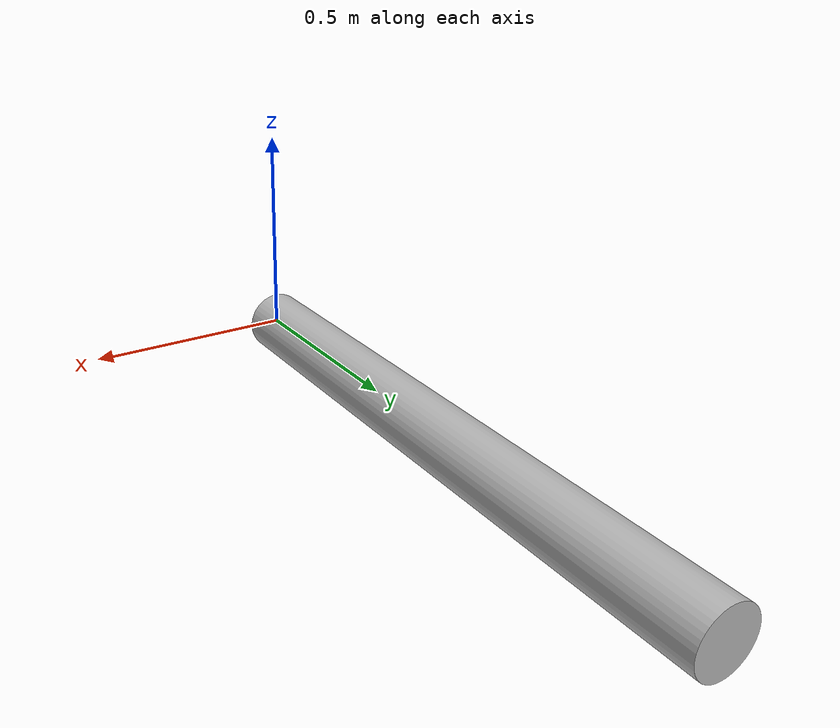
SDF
<?xml version="1.0"?>
<sdf version="1.5">
    <model name="sauvc2022_redflare">
        <static>false</static>
        <link name="link">
            <collision name="collision">
                <geometry>
                    <mesh>
                        <uri>model://sauvc2022_redflare/meshes/RedFlare.obj</uri>
                    </mesh>
                </geometry>
                <surface>
                    <friction>
                        <ode>
                            <mu>100</mu>
                            <mu2>50</mu2>
                        </ode>
                    </friction>
                </surface>
            </collision>
            <visual name="visual">
                <geometry>
                    <mesh>
                        <uri>model://sauvc2022_redflare/meshes/RedFlare.obj</uri>
                    </mesh>
                </geometry>
                <material>
                    <script>
                        <uri>model://sauvc2022_redflare/meshes/RedFlare.mtl</uri>
                        <name>sauvc2022_redflare/material</name>
                    </script>
                </material>
            </visual>
        </link>
    </model>
</sdf>
